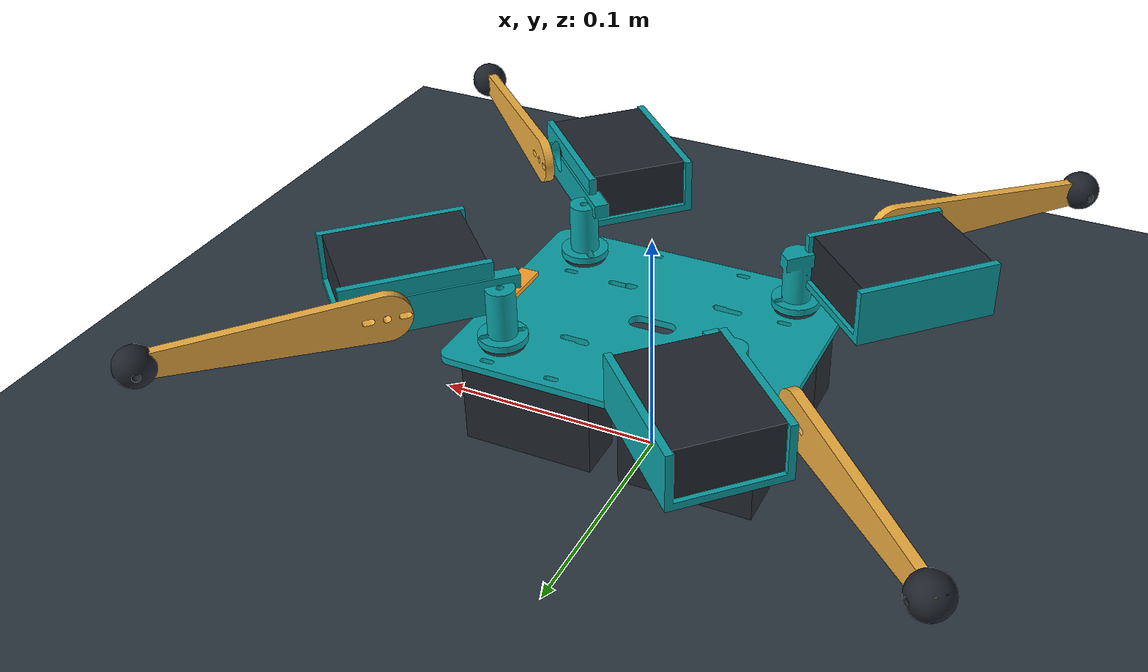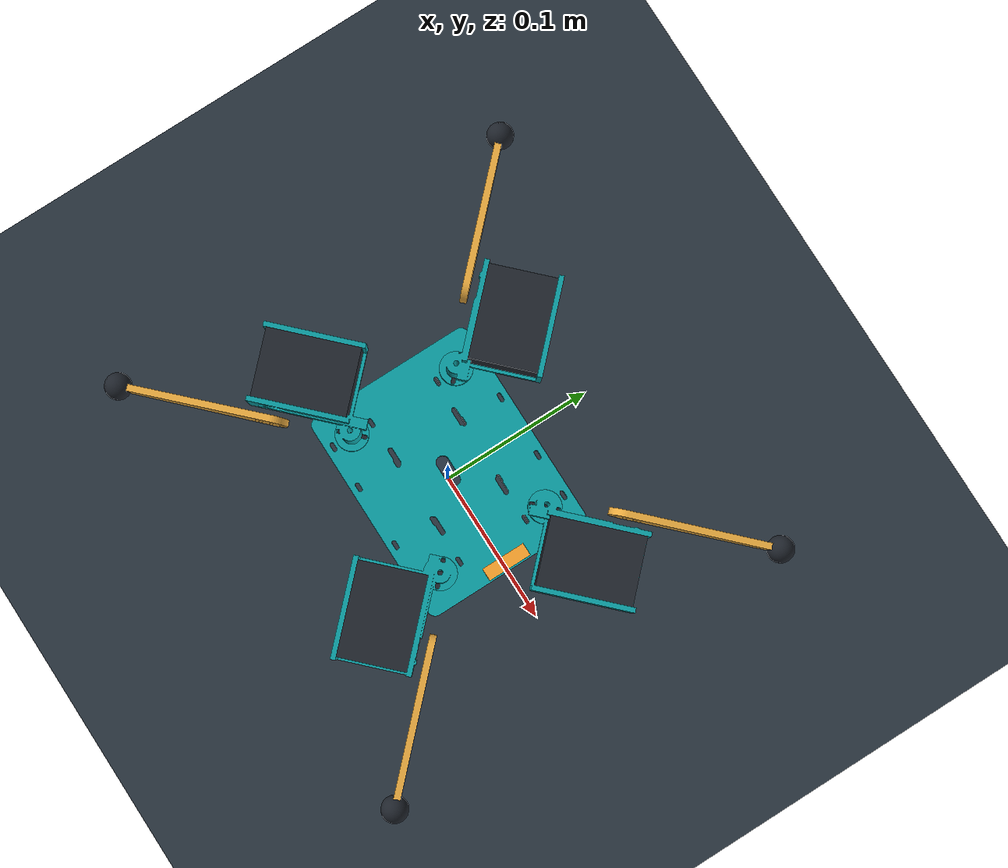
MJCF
<mujoco model="MMA robot">
  <compiler angle="degree" autolimits="true" />
  <option timestep="0.002" integrator="implicitfast" gravity="0 0 -9.81" />
  <visual>
    <global offwidth="1280" offheight="960" />
    <headlight diffuse="0.7 0.7 0.7" ambient="0.35 0.35 0.35" />
    <map znear="0.01" />
  </visual>
  <default>
    <joint damping="0.015" armature="0.00002" />
    <geom friction="0.9 0.01 0.001" condim="3" solref="0.006 1" solimp="0.95 0.99 0.001" />
  </default>
  <asset>
    <mesh name="deck_mesh" file="meshes/deck.stl" scale="0.001 0.001 0.001" />
    <mesh name="carrier_mesh" file="meshes/carrier.stl" scale="0.001 0.001 0.001" />
    <mesh name="leg_mesh" file="meshes/leg.stl" scale="0.001 0.001 0.001" />
    <mesh name="foot_mesh" file="meshes/foot.stl" scale="0.001 0.001 0.001" />
    <texture name="grid" type="2d" builtin="checker" rgb1="0.15 0.19 0.23" rgb2="0.19 0.23 0.27" width="512" height="512" />
    <material name="floor" texture="grid" texrepeat="16 16" reflectance="0.05" />
  </asset>
  <worldbody>
    <light pos="0 -1 2" dir="0 0 -1" directional="true" />
    <geom name="ground" type="plane" size="2 2 0.05" material="floor" />
    <body name="chassis" pos="0 0 0.060942286">
      <freejoint name="floating_base" />
      <geom name="deck" type="box" size="0.068 0.054 0.0015" pos="0 0 -0.0015" mass="0.045" rgba="0.04 0.63 0.65 1" group="3" />
      <geom name="battery_and_controller" type="box" size="0.035 0.02 0.011" pos="0 0 -0.014" mass="0.1" rgba="0.17 0.21 0.27 1" />
      <geom name="front_marker" type="box" pos="0.063 0 0.001" size="0.004 0.014 0.001" mass="0" contype="0" conaffinity="0" rgba="1 0.65 0.18 1" />
      <geom name="FL_hip_servo" type="box" size="0.0279 0.01015 0.0203" pos="0.034 0.036 -0.0233" mass="0.042" rgba="0.13 0.15 0.18 1" />
      <body name="FL_hip" pos="0.048 0.036 0" euler="0 0 45">
        <joint name="FL_swing" axis="0 0 1" range="-25 25" />
        <geom name="FL_riser" type="capsule" fromto="0 0 0.004 0 0 0.026" size="0.006" mass="0.004" rgba="0.04 0.63 0.65 1" group="3" />
        <geom name="FL_bracket" type="box" pos="0.0225 -0.005 0.026" size="0.0315 0.003 0.003" mass="0.004" rgba="0.04 0.63 0.65 1" group="3" />
        <geom name="FL_cradle" type="box" pos="0.031 -0.0263 0.01435" size="0.0299 0.0223 0.0015" mass="0.004" rgba="0.04 0.63 0.65 1" group="3" />
        <geom name="FL_cradle_wall" type="box" pos="0.031 -0.0045 0.0245" size="0.0299 0.0015 0.01165" mass="0" rgba="0.04 0.63 0.65 1" group="3" />
        <geom name="FL_lift_servo" type="box" size="0.0279 0.0203 0.01015" pos="0.031 -0.0263 0.026" mass="0.042" rgba="0.13 0.15 0.18 1" />
        <body name="FL_leg" pos="0.045 0 0.026">
          <joint name="FL_lift" axis="0 1 0" range="25 85" />
          <geom name="FL_shin" type="capsule" fromto="0 0.004 0 0.09 0.004 0" size="0.004" mass="0.008" rgba="0.93 0.68 0.25 1" group="3" />
          <geom name="FL_foot" type="sphere" pos="0.09 0.004 0" size="0.008" mass="0.003" rgba="0.12 0.14 0.17 1" group="3" />
          <site name="FL_toe" pos="0.09 0.004 0" size="0.002" rgba="1 0.3 0.2 1" />
          <geom name="FL_leg_visual" type="mesh" mesh="leg_mesh" pos="0 0 0" mass="0" contype="0" conaffinity="0" group="2" rgba="0.93 0.68 0.25 1" />
          <geom name="FL_foot_visual" type="mesh" mesh="foot_mesh" pos="0.09 0.004 0" mass="0" contype="0" conaffinity="0" group="2" rgba="0.12 0.14 0.17 1" />
        </body>
        <geom name="FL_carrier_visual" type="mesh" mesh="carrier_mesh" pos="0 0 0" mass="0" contype="0" conaffinity="0" group="2" rgba="0.04 0.63 0.65 1" />
      </body>
      <geom name="FR_hip_servo" type="box" size="0.0279 0.01015 0.0203" pos="0.034 -0.036 -0.0233" mass="0.042" rgba="0.13 0.15 0.18 1" />
      <body name="FR_hip" pos="0.048 -0.036 0" euler="0 0 -45">
        <joint name="FR_swing" axis="0 0 1" range="-25 25" />
        <geom name="FR_riser" type="capsule" fromto="0 0 0.004 0 0 0.026" size="0.006" mass="0.004" rgba="0.04 0.63 0.65 1" group="3" />
        <geom name="FR_bracket" type="box" pos="0.0225 -0.005 0.026" size="0.0315 0.003 0.003" mass="0.004" rgba="0.04 0.63 0.65 1" group="3" />
        <geom name="FR_cradle" type="box" pos="0.031 -0.0263 0.01435" size="0.0299 0.0223 0.0015" mass="0.004" rgba="0.04 0.63 0.65 1" group="3" />
        <geom name="FR_cradle_wall" type="box" pos="0.031 -0.0045 0.0245" size="0.0299 0.0015 0.01165" mass="0" rgba="0.04 0.63 0.65 1" group="3" />
        <geom name="FR_lift_servo" type="box" size="0.0279 0.0203 0.01015" pos="0.031 -0.0263 0.026" mass="0.042" rgba="0.13 0.15 0.18 1" />
        <body name="FR_leg" pos="0.045 0 0.026">
          <joint name="FR_lift" axis="0 1 0" range="25 85" />
          <geom name="FR_shin" type="capsule" fromto="0 0.004 0 0.09 0.004 0" size="0.004" mass="0.008" rgba="0.93 0.68 0.25 1" group="3" />
          <geom name="FR_foot" type="sphere" pos="0.09 0.004 0" size="0.008" mass="0.003" rgba="0.12 0.14 0.17 1" group="3" />
          <site name="FR_toe" pos="0.09 0.004 0" size="0.002" rgba="1 0.3 0.2 1" />
          <geom name="FR_leg_visual" type="mesh" mesh="leg_mesh" pos="0 0 0" mass="0" contype="0" conaffinity="0" group="2" rgba="0.93 0.68 0.25 1" />
          <geom name="FR_foot_visual" type="mesh" mesh="foot_mesh" pos="0.09 0.004 0" mass="0" contype="0" conaffinity="0" group="2" rgba="0.12 0.14 0.17 1" />
        </body>
        <geom name="FR_carrier_visual" type="mesh" mesh="carrier_mesh" pos="0 0 0" mass="0" contype="0" conaffinity="0" group="2" rgba="0.04 0.63 0.65 1" />
      </body>
      <geom name="RL_hip_servo" type="box" size="0.0279 0.01015 0.0203" pos="-0.034 0.036 -0.0233" mass="0.042" rgba="0.13 0.15 0.18 1" />
      <body name="RL_hip" pos="-0.048 0.036 0" euler="0 0 135">
        <joint name="RL_swing" axis="0 0 1" range="-25 25" />
        <geom name="RL_riser" type="capsule" fromto="0 0 0.004 0 0 0.026" size="0.006" mass="0.004" rgba="0.04 0.63 0.65 1" group="3" />
        <geom name="RL_bracket" type="box" pos="0.0225 -0.005 0.026" size="0.0315 0.003 0.003" mass="0.004" rgba="0.04 0.63 0.65 1" group="3" />
        <geom name="RL_cradle" type="box" pos="0.031 -0.0263 0.01435" size="0.0299 0.0223 0.0015" mass="0.004" rgba="0.04 0.63 0.65 1" group="3" />
        <geom name="RL_cradle_wall" type="box" pos="0.031 -0.0045 0.0245" size="0.0299 0.0015 0.01165" mass="0" rgba="0.04 0.63 0.65 1" group="3" />
        <geom name="RL_lift_servo" type="box" size="0.0279 0.0203 0.01015" pos="0.031 -0.0263 0.026" mass="0.042" rgba="0.13 0.15 0.18 1" />
        <body name="RL_leg" pos="0.045 0 0.026">
          <joint name="RL_lift" axis="0 1 0" range="25 85" />
          <geom name="RL_shin" type="capsule" fromto="0 0.004 0 0.09 0.004 0" size="0.004" mass="0.008" rgba="0.93 0.68 0.25 1" group="3" />
          <geom name="RL_foot" type="sphere" pos="0.09 0.004 0" size="0.008" mass="0.003" rgba="0.12 0.14 0.17 1" group="3" />
          <site name="RL_toe" pos="0.09 0.004 0" size="0.002" rgba="1 0.3 0.2 1" />
          <geom name="RL_leg_visual" type="mesh" mesh="leg_mesh" pos="0 0 0" mass="0" contype="0" conaffinity="0" group="2" rgba="0.93 0.68 0.25 1" />
          <geom name="RL_foot_visual" type="mesh" mesh="foot_mesh" pos="0.09 0.004 0" mass="0" contype="0" conaffinity="0" group="2" rgba="0.12 0.14 0.17 1" />
        </body>
        <geom name="RL_carrier_visual" type="mesh" mesh="carrier_mesh" pos="0 0 0" mass="0" contype="0" conaffinity="0" group="2" rgba="0.04 0.63 0.65 1" />
      </body>
      <geom name="RR_hip_servo" type="box" size="0.0279 0.01015 0.0203" pos="-0.034 -0.036 -0.0233" mass="0.042" rgba="0.13 0.15 0.18 1" />
      <body name="RR_hip" pos="-0.048 -0.036 0" euler="0 0 -135">
        <joint name="RR_swing" axis="0 0 1" range="-25 25" />
        <geom name="RR_riser" type="capsule" fromto="0 0 0.004 0 0 0.026" size="0.006" mass="0.004" rgba="0.04 0.63 0.65 1" group="3" />
        <geom name="RR_bracket" type="box" pos="0.0225 -0.005 0.026" size="0.0315 0.003 0.003" mass="0.004" rgba="0.04 0.63 0.65 1" group="3" />
        <geom name="RR_cradle" type="box" pos="0.031 -0.0263 0.01435" size="0.0299 0.0223 0.0015" mass="0.004" rgba="0.04 0.63 0.65 1" group="3" />
        <geom name="RR_cradle_wall" type="box" pos="0.031 -0.0045 0.0245" size="0.0299 0.0015 0.01165" mass="0" rgba="0.04 0.63 0.65 1" group="3" />
        <geom name="RR_lift_servo" type="box" size="0.0279 0.0203 0.01015" pos="0.031 -0.0263 0.026" mass="0.042" rgba="0.13 0.15 0.18 1" />
        <body name="RR_leg" pos="0.045 0 0.026">
          <joint name="RR_lift" axis="0 1 0" range="25 85" />
          <geom name="RR_shin" type="capsule" fromto="0 0.004 0 0.09 0.004 0" size="0.004" mass="0.008" rgba="0.93 0.68 0.25 1" group="3" />
          <geom name="RR_foot" type="sphere" pos="0.09 0.004 0" size="0.008" mass="0.003" rgba="0.12 0.14 0.17 1" group="3" />
          <site name="RR_toe" pos="0.09 0.004 0" size="0.002" rgba="1 0.3 0.2 1" />
          <geom name="RR_leg_visual" type="mesh" mesh="leg_mesh" pos="0 0 0" mass="0" contype="0" conaffinity="0" group="2" rgba="0.93 0.68 0.25 1" />
          <geom name="RR_foot_visual" type="mesh" mesh="foot_mesh" pos="0.09 0.004 0" mass="0" contype="0" conaffinity="0" group="2" rgba="0.12 0.14 0.17 1" />
        </body>
        <geom name="RR_carrier_visual" type="mesh" mesh="carrier_mesh" pos="0 0 0" mass="0" contype="0" conaffinity="0" group="2" rgba="0.04 0.63 0.65 1" />
      </body>
      <geom name="deck_visual" type="mesh" mesh="deck_mesh" pos="0 0 0" mass="0" contype="0" conaffinity="0" group="2" rgba="0.04 0.63 0.65 1" />
    </body>
  </worldbody>
  <actuator>
    <motor name="FL_swing" joint="FL_swing" ctrllimited="true" ctrlrange="-0.16 0.16" />
    <motor name="FL_lift" joint="FL_lift" ctrllimited="true" ctrlrange="-0.16 0.16" />
    <motor name="FR_swing" joint="FR_swing" ctrllimited="true" ctrlrange="-0.16 0.16" />
    <motor name="FR_lift" joint="FR_lift" ctrllimited="true" ctrlrange="-0.16 0.16" />
    <motor name="RL_swing" joint="RL_swing" ctrllimited="true" ctrlrange="-0.16 0.16" />
    <motor name="RL_lift" joint="RL_lift" ctrllimited="true" ctrlrange="-0.16 0.16" />
    <motor name="RR_swing" joint="RR_swing" ctrllimited="true" ctrlrange="-0.16 0.16" />
    <motor name="RR_lift" joint="RR_lift" ctrllimited="true" ctrlrange="-0.16 0.16" />
  </actuator>
  <keyframe>
    <key name="stand" qpos="0 0 0.060942286 1 0 0 0 0 1.0471976 0 1.0471976 0 1.0471976 0 1.0471976" />
  </keyframe>
</mujoco>
